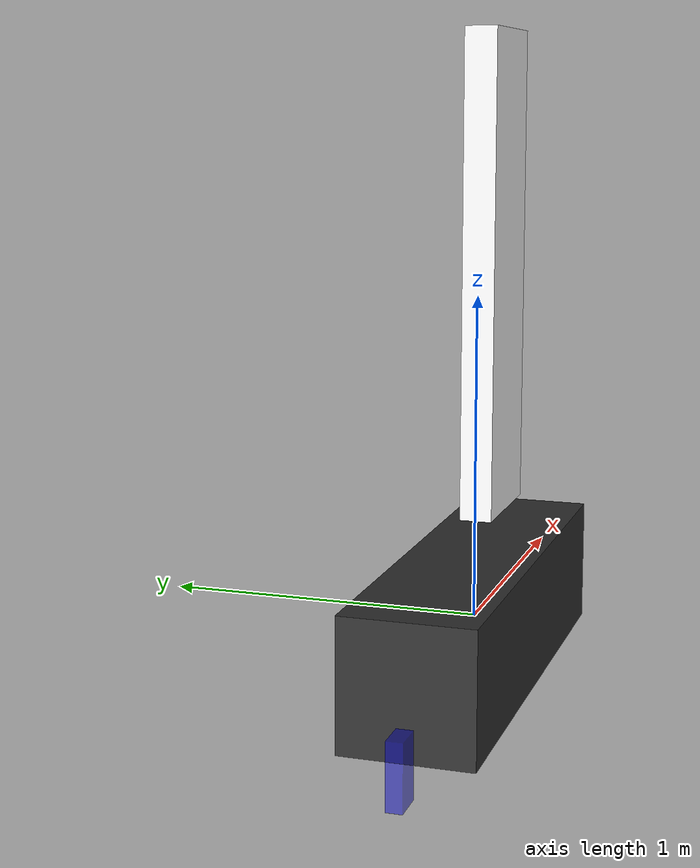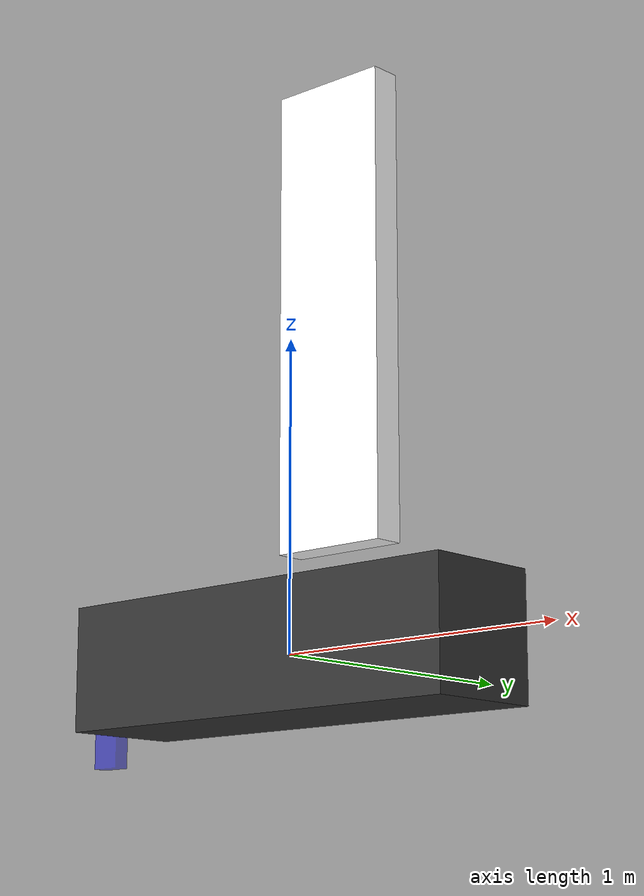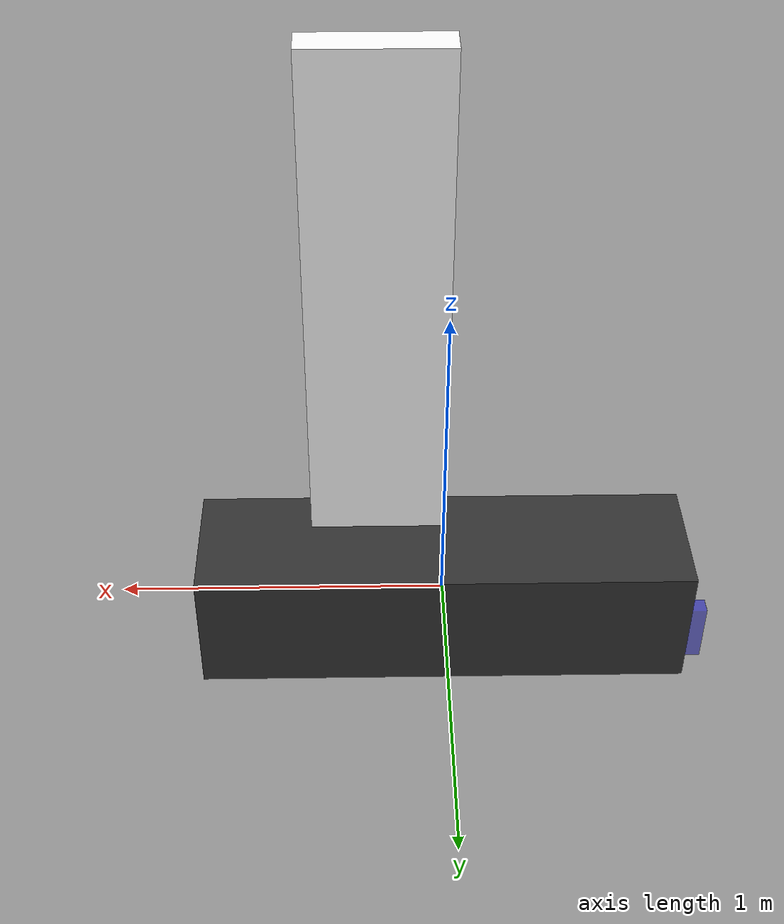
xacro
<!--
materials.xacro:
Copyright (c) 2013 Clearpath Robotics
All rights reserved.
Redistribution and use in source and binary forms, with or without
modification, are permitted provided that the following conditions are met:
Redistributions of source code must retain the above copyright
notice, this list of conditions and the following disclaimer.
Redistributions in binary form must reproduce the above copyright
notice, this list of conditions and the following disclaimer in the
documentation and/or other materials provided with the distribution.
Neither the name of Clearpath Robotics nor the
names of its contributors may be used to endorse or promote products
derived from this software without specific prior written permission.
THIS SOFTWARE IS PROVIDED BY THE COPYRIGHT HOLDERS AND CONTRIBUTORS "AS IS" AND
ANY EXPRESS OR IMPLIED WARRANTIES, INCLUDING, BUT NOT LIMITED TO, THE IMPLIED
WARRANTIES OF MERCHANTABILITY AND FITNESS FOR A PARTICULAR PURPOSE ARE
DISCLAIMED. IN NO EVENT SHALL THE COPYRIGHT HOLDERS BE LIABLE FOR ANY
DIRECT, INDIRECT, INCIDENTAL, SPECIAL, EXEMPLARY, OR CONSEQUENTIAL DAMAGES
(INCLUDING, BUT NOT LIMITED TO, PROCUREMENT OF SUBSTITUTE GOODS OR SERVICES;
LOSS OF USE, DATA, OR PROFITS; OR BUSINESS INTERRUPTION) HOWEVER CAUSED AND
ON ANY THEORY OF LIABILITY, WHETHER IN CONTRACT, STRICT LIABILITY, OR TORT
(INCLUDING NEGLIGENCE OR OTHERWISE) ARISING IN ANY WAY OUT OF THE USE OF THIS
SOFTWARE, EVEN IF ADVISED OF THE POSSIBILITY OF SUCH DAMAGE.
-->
<?xml version="1.0"?>
<robot xmlns:xacro="http://ros.org/wiki/xacro" name="sailboat">

  <!-- Included URDF/XACRO Files -->
  <xacro:include filename="$(find sailboat_description)/urdf/materials.xacro" />

  <!-- PROPERTY LIST -->
  <!--All units in m-kg-s-radians unit system -->
  <property name="M_PI" value="3.1415926535897931" />

  <!-- BASE-FOOTPRINT -->
  <!-- base_footprint is a fictitious link(frame) that is on the ground right below base_link origin, navigation stack depends on this frame -->
  <link name="base_footprint">
  <inertial>
    <mass value="0.0001" />
    <origin xyz="0 0 0" />
    <inertia ixx="0.0001" ixy="0.0" ixz="0.0"
             iyy="0.0001" iyz="0.0"
             izz="0.0001" />
  </inertial>

  <visual>
    <origin xyz="0 0 0" rpy="0 0 0" />
    <geometry>
      <box size="0.001 0.001 0.001" />
    </geometry>
  </visual>
  </link>

  <gazebo reference="base_footprint">
    <turnGravityOff>false</turnGravityOff>
  </gazebo>

  <joint name="base_footprint_joint" type="fixed">
    <origin xyz="0 0 0" rpy="0 0 0" />
    <parent link="base_footprint"/>
    <child link="base_link" />
  </joint>

  <!-- BASE-LINK -->
  <!--Actual body/chassis of the robot-->
  <link name="base_link">
    <inertial>
      <mass value="29" />
      <origin xyz="0 0 0" />
      <inertia ixx="10" ixy="0" ixz="0" iyy="10" iyz="0" izz="10" />
    </inertial>

    <visual>
      <origin xyz="0 0 0" rpy="0 0 0" />
      <geometry>
        <box size="1.5 0.4 0.4"/>
      </geometry>
      <material name="DarkGray" />
    </visual>

    <collision>
      <origin xyz="0 0 0" rpy="0 0 0" />
      <geometry>
        <box size = "1.5 0.6 0.6"/> <!--making it slightly bigger in x and z direction-->
      </geometry>
    </collision>
  </link>

  <gazebo reference="base_link">
    <material>Gazebo/FlatBlack</material>
    <turnGravityOff>false</turnGravityOff>
  </gazebo>

  <!-- Sail -->
  <link name="sail">
    <visual>
      <geometry>
        <box size="0.4 0.1 1.5"/>
      </geometry>
      <origin rpy="0 0 0" xyz="0 0 0.75"/>
      <material name="White"/>
    </visual>
  </link>

  <gazebo reference="sail">
    <material>Gazebo/White</material>
    <turnGravityOff>false</turnGravityOff>
  </gazebo>

  <!-- Rudder -->
  <link name="rudder">
    <visual>
      <geometry>
        <box size="0.1 0.05 0.2"/>
      </geometry>
      <origin rpy="0 0 0" xyz="-0.05 0 -0.1"/>
      <material name="Blue"/>
    </visual>
  </link>

  <gazebo reference="rudder">
    <material>Gazebo/Bule</material>
    <turnGravityOff>false</turnGravityOff>
  </gazebo>

  <joint name="boat_to_sail" type="continuous">
    <parent link="base_link"/>
    <child link="sail"/>
    <axis xyz="0 0 1"/>
    <origin xyz="0.2 0 .3"/>
  </joint>

  <joint name="boat_to_rudder" type="continuous">
    <parent link="base_link"/>
    <child link="rudder"/>
    <axis xyz="0 0 1"/>
    <origin xyz="-0.75 0 -0.1"/>
  </joint>

</robot>

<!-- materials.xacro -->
<robot>
	<material name="Black">
		<color rgba="0.0 0.0 0.0 1.0"/>
	</material>

	<material name="Gray">
		<color rgba="0.7 0.7 0.7 1.0"/>
	</material>

	<material name="DarkGray">
		<color rgba="0.2 0.2 0.2 1.0"/>
	</material>

	<material name="White">
		<color rgba="1.0 1.0 1.0 1.0"/>
	</material>

	<material name="Yellow">
		<color rgba="0.8 0.8 0.0 1.0"/>
	</material>

	<material name="Blue">
		<color rgba="0 0 0.8 0.5"/>
	</material>
</robot>
